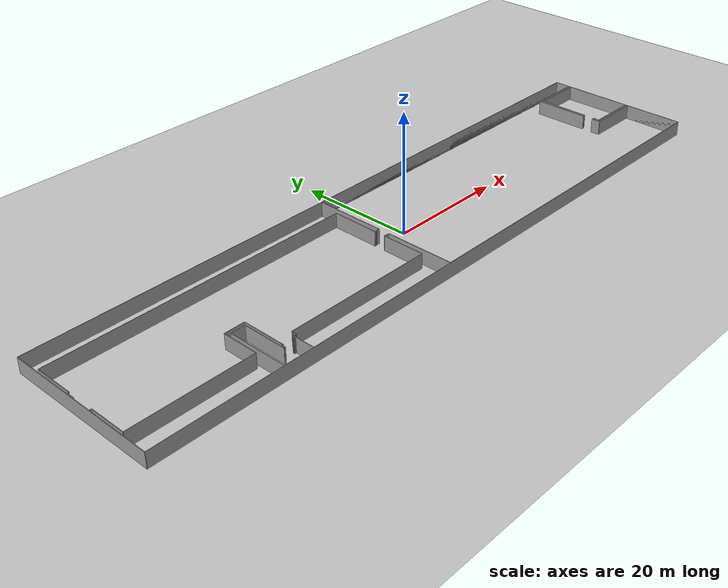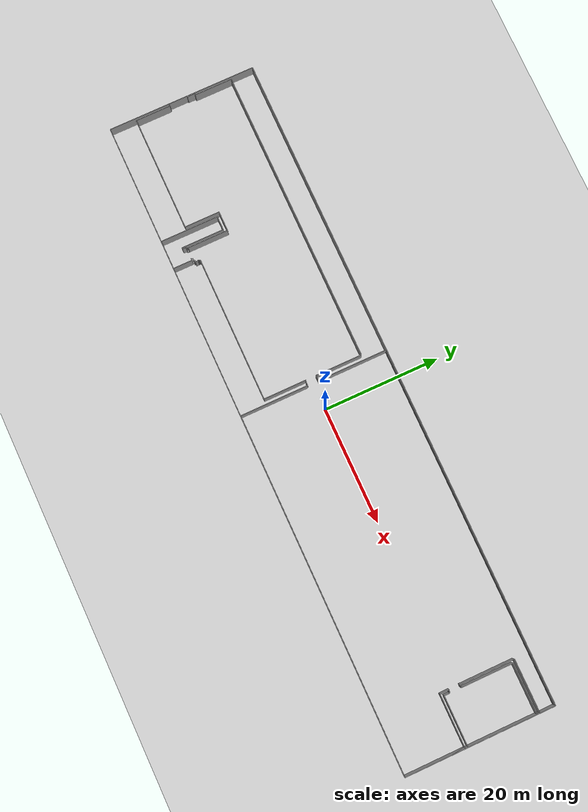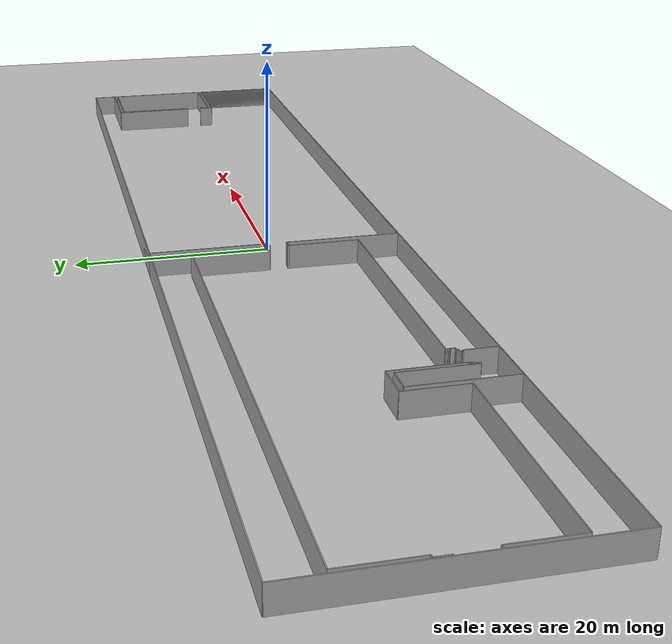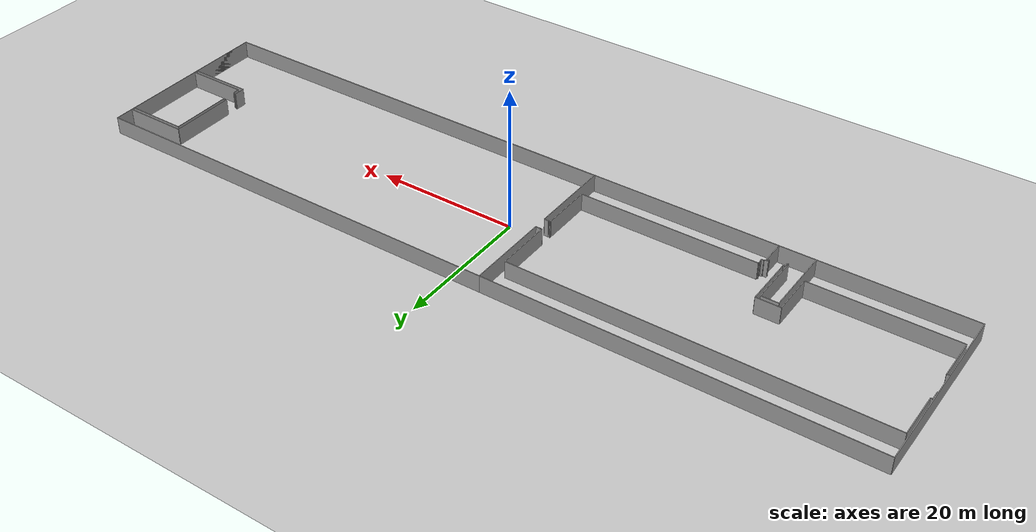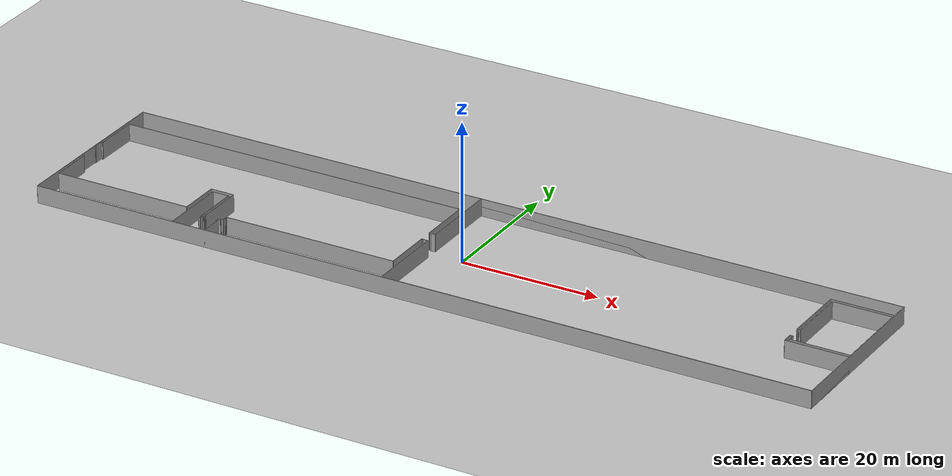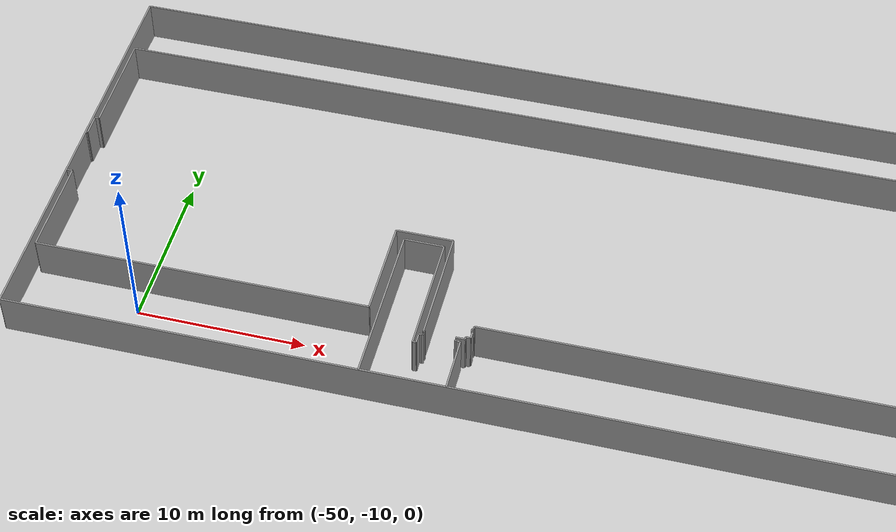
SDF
<sdf version="1.6">
  <world name="default">
    <light name="sun" type="directional">
      <cast_shadows>1</cast_shadows>
      <pose frame="">0 0 10 0 -0 0</pose>
      <diffuse>0.8 0.8 0.8 1</diffuse>
      <specular>0.1 0.1 0.1 1</specular>
      <attenuation>
        <range>1000</range>
        <constant>0.9</constant>
        <linear>0.01</linear>
        <quadratic>0.001</quadratic>
      </attenuation>
      <direction>-0.5 0.5 -1</direction>
    </light>
    <model name="ground_plane">
      <static>1</static>
      <link name="link">
        <collision name="collision">
          <geometry>
            <plane>
              <normal>0 0 1</normal>
              <size>100 100</size>
            </plane>
          </geometry>
          <surface>
            <friction>
              <ode>
                <mu>100</mu>
                <mu2>50</mu2>
              </ode>
              <torsional>
                <ode />
              </torsional>
            </friction>
            <contact>
              <ode />
            </contact>
            <bounce />
          </surface>
          <max_contacts>10</max_contacts>
        </collision>
        <visual name="visual">
          <cast_shadows>0</cast_shadows>
          <geometry>
            <plane>
              <normal>0 0 1</normal>
              <size>100 100</size>
            </plane>
          </geometry>
          <material>
            <script>
              <uri>file://media/materials/scripts/gazebo.material</uri>
              <name>Gazebo/Grey</name>
            </script>
          </material>
        </visual>
        <self_collide>0</self_collide>
        <kinematic>0</kinematic>
        <gravity>1</gravity>
      </link>
    </model>
    <gravity>0 0 -9.8</gravity>
    <magnetic_field>6e-06 2.3e-05 -4.2e-05</magnetic_field>
    <atmosphere type="adiabatic" />
    <physics default="0" name="default_physics" type="ode">
      <max_step_size>0.001</max_step_size>
      <real_time_factor>1</real_time_factor>
      <real_time_update_rate>1000</real_time_update_rate>
    </physics>
    <scene>
      <ambient>0.4 0.4 0.4 1</ambient>
      <background>0.7 0.7 0.7 1</background>
      <shadows>1</shadows>
    </scene>
    <spherical_coordinates>
      <surface_model>EARTH_WGS84</surface_model>
      <latitude_deg>0</latitude_deg>
      <longitude_deg>0</longitude_deg>
      <elevation>0</elevation>
      <heading_deg>0</heading_deg>
    </spherical_coordinates>
  <model name="50055642">
		<static>1</static>
		<link name="Wall_0">
			<collision name="Wall_0_Collision">
				<geometry>
					<box>
						<size>9.98049765908 0.1 2.5</size>
					</box>
				</geometry>
				<pose frame="">4.99024882954 0 1.25 0 0 0</pose>
			</collision>
			<visual name="Wall_0_Visual">
				<pose frame="">4.99024882954 0 1.25 0 0 0</pose>
				<geometry>
					<box>
						<size>9.98049765908 0.1 2.5</size>
					</box>
				</geometry>
				<material>
					<script>
						<uri>file://media/materials/scripts/gazebo.material</uri>
						<name>Gazebo/Grey</name>
					</script>
					<ambient>1 1 1 1</ambient>
				</material>
			</visual>
			<pose frame="">20.943989531 -25.6984950799 0 0 0 1.57079632679</pose>
		</link>
		<link name="Wall_1">
			<collision name="Wall_1_Collision">
				<geometry>
					<box>
						<size>2.38817916743 0.1 2.5</size>
					</box>
				</geometry>
				<pose frame="">1.19408958372 0 1.25 0 0 0</pose>
			</collision>
			<visual name="Wall_1_Visual">
				<pose frame="">1.19408958372 0 1.25 0 0 0</pose>
				<geometry>
					<box>
						<size>2.38817916743 0.1 2.5</size>
					</box>
				</geometry>
				<material>
					<script>
						<uri>file://media/materials/scripts/gazebo.material</uri>
						<name>Gazebo/Grey</name>
					</script>
					<ambient>1 1 1 1</ambient>
				</material>
			</visual>
			<pose frame="">20.943989531 -15.7179974209 0 0 0 0.0</pose>
		</link>
		<link name="Wall_2">
			<collision name="Wall_2_Collision">
				<geometry>
					<box>
						<size>7.34418773068 0.1 2.5</size>
					</box>
				</geometry>
				<pose frame="">3.67209386534 0 1.25 0 0 0</pose>
			</collision>
			<visual name="Wall_2_Visual">
				<pose frame="">3.67209386534 0 1.25 0 0 0</pose>
				<geometry>
					<box>
						<size>7.34418773068 0.1 2.5</size>
					</box>
				</geometry>
				<material>
					<script>
						<uri>file://media/materials/scripts/gazebo.material</uri>
						<name>Gazebo/Grey</name>
					</script>
					<ambient>1 1 1 1</ambient>
				</material>
			</visual>
			<pose frame="">23.3321686984 -15.7179974209 0 0 0 -1.57079632679</pose>
		</link>
		<link name="Wall_3">
			<collision name="Wall_3_Collision">
				<geometry>
					<box>
						<size>0.207093261846 0.1 2.5</size>
					</box>
				</geometry>
				<pose frame="">0.103546630923 0 1.25 0 0 0</pose>
			</collision>
			<visual name="Wall_3_Visual">
				<pose frame="">0.103546630923 0 1.25 0 0 0</pose>
				<geometry>
					<box>
						<size>0.207093261846 0.1 2.5</size>
					</box>
				</geometry>
				<material>
					<script>
						<uri>file://media/materials/scripts/gazebo.material</uri>
						<name>Gazebo/Grey</name>
					</script>
					<ambient>1 1 1 1</ambient>
				</material>
			</visual>
			<pose frame="">23.3321686984 -23.0621851515 0 0 0 0.0</pose>
		</link>
		<link name="Wall_4">
			<collision name="Wall_4_Collision">
				<geometry>
					<box>
						<size>0.628140543906 0.1 2.5</size>
					</box>
				</geometry>
				<pose frame="">0.314070271953 0 1.25 0 0 0</pose>
			</collision>
			<visual name="Wall_4_Visual">
				<pose frame="">0.314070271953 0 1.25 0 0 0</pose>
				<geometry>
					<box>
						<size>0.628140543906 0.1 2.5</size>
					</box>
				</geometry>
				<material>
					<script>
						<uri>file://media/materials/scripts/gazebo.material</uri>
						<name>Gazebo/Grey</name>
					</script>
					<ambient>1 1 1 1</ambient>
				</material>
			</visual>
			<pose frame="">23.5392619603 -23.0621851515 0 0 0 1.57079632679</pose>
		</link>
		<link name="Wall_5">
			<collision name="Wall_5_Collision">
				<geometry>
					<box>
						<size>0.166563967043 0.1 2.5</size>
					</box>
				</geometry>
				<pose frame="">0.0832819835215 0 1.25 0 0 0</pose>
			</collision>
			<visual name="Wall_5_Visual">
				<pose frame="">0.0832819835215 0 1.25 0 0 0</pose>
				<geometry>
					<box>
						<size>0.166563967043 0.1 2.5</size>
					</box>
				</geometry>
				<material>
					<script>
						<uri>file://media/materials/scripts/gazebo.material</uri>
						<name>Gazebo/Grey</name>
					</script>
					<ambient>1 1 1 1</ambient>
				</material>
			</visual>
			<pose frame="">23.5392619603 -22.4340446076 0 0 0 0.0</pose>
		</link>
		<link name="Wall_6">
			<collision name="Wall_6_Collision">
				<geometry>
					<box>
						<size>0.0190576621331 0.1 2.5</size>
					</box>
				</geometry>
				<pose frame="">0.00952883106653 0 1.25 0 0 0</pose>
			</collision>
			<visual name="Wall_6_Visual">
				<pose frame="">0.00952883106653 0 1.25 0 0 0</pose>
				<geometry>
					<box>
						<size>0.0190576621331 0.1 2.5</size>
					</box>
				</geometry>
				<material>
					<script>
						<uri>file://media/materials/scripts/gazebo.material</uri>
						<name>Gazebo/Grey</name>
					</script>
					<ambient>1 1 1 1</ambient>
				</material>
			</visual>
			<pose frame="">23.7058259273 -22.4340446076 0 0 0 1.57079632679</pose>
		</link>
		<link name="Wall_7">
			<collision name="Wall_7_Collision">
				<geometry>
					<box>
						<size>0.106595856864 0.1 2.5</size>
					</box>
				</geometry>
				<pose frame="">0.0532979284321 0 1.25 0 0 0</pose>
			</collision>
			<visual name="Wall_7_Visual">
				<pose frame="">0.0532979284321 0 1.25 0 0 0</pose>
				<geometry>
					<box>
						<size>0.106595856864 0.1 2.5</size>
					</box>
				</geometry>
				<material>
					<script>
						<uri>file://media/materials/scripts/gazebo.material</uri>
						<name>Gazebo/Grey</name>
					</script>
					<ambient>1 1 1 1</ambient>
				</material>
			</visual>
			<pose frame="">23.7058259273 -22.4149869455 0 0 0 0.0</pose>
		</link>
		<link name="Wall_8">
			<collision name="Wall_8_Collision">
				<geometry>
					<box>
						<size>0.126288774402 0.1 2.5</size>
					</box>
				</geometry>
				<pose frame="">0.0631443872009 0 1.25 0 0 0</pose>
			</collision>
			<visual name="Wall_8_Visual">
				<pose frame="">0.0631443872009 0 1.25 0 0 0</pose>
				<geometry>
					<box>
						<size>0.126288774402 0.1 2.5</size>
					</box>
				</geometry>
				<material>
					<script>
						<uri>file://media/materials/scripts/gazebo.material</uri>
						<name>Gazebo/Grey</name>
					</script>
					<ambient>1 1 1 1</ambient>
				</material>
			</visual>
			<pose frame="">25.5598823507 -22.4149869455 0 0 0 0.0</pose>
		</link>
		<link name="Wall_9">
			<collision name="Wall_9_Collision">
				<geometry>
					<box>
						<size>0.0135944656549 0.1 2.5</size>
					</box>
				</geometry>
				<pose frame="">0.00679723282746 0 1.25 0 0 0</pose>
			</collision>
			<visual name="Wall_9_Visual">
				<pose frame="">0.00679723282746 0 1.25 0 0 0</pose>
				<geometry>
					<box>
						<size>0.0135944656549 0.1 2.5</size>
					</box>
				</geometry>
				<material>
					<script>
						<uri>file://media/materials/scripts/gazebo.material</uri>
						<name>Gazebo/Grey</name>
					</script>
					<ambient>1 1 1 1</ambient>
				</material>
			</visual>
			<pose frame="">25.6861711251 -22.4149869455 0 0 0 -1.57079632679</pose>
		</link>
		<link name="Wall_10">
			<collision name="Wall_10_Collision">
				<geometry>
					<box>
						<size>0.221322982905 0.1 2.5</size>
					</box>
				</geometry>
				<pose frame="">0.110661491453 0 1.25 0 0 0</pose>
			</collision>
			<visual name="Wall_10_Visual">
				<pose frame="">0.110661491453 0 1.25 0 0 0</pose>
				<geometry>
					<box>
						<size>0.221322982905 0.1 2.5</size>
					</box>
				</geometry>
				<material>
					<script>
						<uri>file://media/materials/scripts/gazebo.material</uri>
						<name>Gazebo/Grey</name>
					</script>
					<ambient>1 1 1 1</ambient>
				</material>
			</visual>
			<pose frame="">25.6861711251 -22.4285814112 0 0 0 0.0</pose>
		</link>
		<link name="Wall_11">
			<collision name="Wall_11_Collision">
				<geometry>
					<box>
						<size>3.2824917258 0.1 2.5</size>
					</box>
				</geometry>
				<pose frame="">1.6412458629 0 1.25 0 0 0</pose>
			</collision>
			<visual name="Wall_11_Visual">
				<pose frame="">1.6412458629 0 1.25 0 0 0</pose>
				<geometry>
					<box>
						<size>3.2824917258 0.1 2.5</size>
					</box>
				</geometry>
				<material>
					<script>
						<uri>file://media/materials/scripts/gazebo.material</uri>
						<name>Gazebo/Grey</name>
					</script>
					<ambient>1 1 1 1</ambient>
				</material>
			</visual>
			<pose frame="">25.907494108 -22.4285814112 0 0 0 -1.57079632679</pose>
		</link>
		<link name="Wall_12">
			<collision name="Wall_12_Collision">
				<geometry>
					<box>
						<size>4.96352051407 0.1 2.5</size>
					</box>
				</geometry>
				<pose frame="">2.48176025703 0 1.25 0 0 0</pose>
			</collision>
			<visual name="Wall_12_Visual">
				<pose frame="">2.48176025703 0 1.25 0 0 0</pose>
				<geometry>
					<box>
						<size>4.96352051407 0.1 2.5</size>
					</box>
				</geometry>
				<material>
					<script>
						<uri>file://media/materials/scripts/gazebo.material</uri>
						<name>Gazebo/Grey</name>
					</script>
					<ambient>1 1 1 1</ambient>
				</material>
			</visual>
			<pose frame="">25.907494108 -25.711073137 0 0 0 3.13905855094</pose>
		</link>
		<link name="Wall_13">
			<collision name="Wall_13_Collision">
				<geometry>
					<box>
						<size>6.02349174486 0.1 2.5</size>
					</box>
				</geometry>
				<pose frame="">3.01174587243 0 1.25 0 0 0</pose>
			</collision>
			<visual name="Wall_13_Visual">
				<pose frame="">3.01174587243 0 1.25 0 0 0</pose>
				<geometry>
					<box>
						<size>6.02349174486 0.1 2.5</size>
					</box>
				</geometry>
				<material>
					<script>
						<uri>file://media/materials/scripts/gazebo.material</uri>
						<name>Gazebo/Grey</name>
					</script>
					<ambient>1 1 1 1</ambient>
				</material>
			</visual>
			<pose frame="">0.384202468603 -21.1750954471 0 0 0 1.57079632679</pose>
		</link>
		<link name="Wall_14">
			<collision name="Wall_14_Collision">
				<geometry>
					<box>
						<size>0.384202468603 0.1 2.5</size>
					</box>
				</geometry>
				<pose frame="">0.192101234301 0 1.25 0 0 0</pose>
			</collision>
			<visual name="Wall_14_Visual">
				<pose frame="">0.192101234301 0 1.25 0 0 0</pose>
				<geometry>
					<box>
						<size>0.384202468603 0.1 2.5</size>
					</box>
				</geometry>
				<material>
					<script>
						<uri>file://media/materials/scripts/gazebo.material</uri>
						<name>Gazebo/Grey</name>
					</script>
					<ambient>1 1 1 1</ambient>
				</material>
			</visual>
			<pose frame="">0.384202468603 -15.1516037023 0 0 0 3.14159265359</pose>
		</link>
		<link name="Wall_15">
			<collision name="Wall_15_Collision">
				<geometry>
					<box>
						<size>0.124255957108 0.1 2.5</size>
					</box>
				</geometry>
				<pose frame="">0.0621279785538 0 1.25 0 0 0</pose>
			</collision>
			<visual name="Wall_15_Visual">
				<pose frame="">0.0621279785538 0 1.25 0 0 0</pose>
				<geometry>
					<box>
						<size>0.124255957108 0.1 2.5</size>
					</box>
				</geometry>
				<material>
					<script>
						<uri>file://media/materials/scripts/gazebo.material</uri>
						<name>Gazebo/Grey</name>
					</script>
					<ambient>1 1 1 1</ambient>
				</material>
			</visual>
			<pose frame="">0.0 -11.8703824873 0 0 0 0.0</pose>
		</link>
		<link name="Wall_16">
			<collision name="Wall_16_Collision">
				<geometry>
					<box>
						<size>1.32374521176 0.1 2.5</size>
					</box>
				</geometry>
				<pose frame="">0.661872605881 0 1.25 0 0 0</pose>
			</collision>
			<visual name="Wall_16_Visual">
				<pose frame="">0.661872605881 0 1.25 0 0 0</pose>
				<geometry>
					<box>
						<size>1.32374521176 0.1 2.5</size>
					</box>
				</geometry>
				<material>
					<script>
						<uri>file://media/materials/scripts/gazebo.material</uri>
						<name>Gazebo/Grey</name>
					</script>
					<ambient>1 1 1 1</ambient>
				</material>
			</visual>
			<pose frame="">0.124255957108 -11.8703824873 0 0 0 1.57079632679</pose>
		</link>
		<link name="Wall_17">
			<collision name="Wall_17_Collision">
				<geometry>
					<box>
						<size>0.251434089076 0.1 2.5</size>
					</box>
				</geometry>
				<pose frame="">0.125717044538 0 1.25 0 0 0</pose>
			</collision>
			<visual name="Wall_17_Visual">
				<pose frame="">0.125717044538 0 1.25 0 0 0</pose>
				<geometry>
					<box>
						<size>0.251434089076 0.1 2.5</size>
					</box>
				</geometry>
				<material>
					<script>
						<uri>file://media/materials/scripts/gazebo.material</uri>
						<name>Gazebo/Grey</name>
					</script>
					<ambient>1 1 1 1</ambient>
				</material>
			</visual>
			<pose frame="">0.124255957108 -10.5466372755 0 0 0 0.0</pose>
		</link>
		<link name="Wall_18">
			<collision name="Wall_18_Collision">
				<geometry>
					<box>
						<size>6.51797455167 0.1 2.5</size>
					</box>
				</geometry>
				<pose frame="">3.25898727583 0 1.25 0 0 0</pose>
			</collision>
			<visual name="Wall_18_Visual">
				<pose frame="">3.25898727583 0 1.25 0 0 0</pose>
				<geometry>
					<box>
						<size>6.51797455167 0.1 2.5</size>
					</box>
				</geometry>
				<material>
					<script>
						<uri>file://media/materials/scripts/gazebo.material</uri>
						<name>Gazebo/Grey</name>
					</script>
					<ambient>1 1 1 1</ambient>
				</material>
			</visual>
			<pose frame="">0.375690046183 -10.5466372755 0 0 0 1.57079632679</pose>
		</link>
		<link name="Wall_19">
			<collision name="Wall_19_Collision">
				<geometry>
					<box>
						<size>51.1754130748 0.1 2.5</size>
					</box>
				</geometry>
				<pose frame="">25.5877065374 0 1.25 0 0 0</pose>
			</collision>
			<visual name="Wall_19_Visual">
				<pose frame="">25.5877065374 0 1.25 0 0 0</pose>
				<geometry>
					<box>
						<size>51.1754130748 0.1 2.5</size>
					</box>
				</geometry>
				<material>
					<script>
						<uri>file://media/materials/scripts/gazebo.material</uri>
						<name>Gazebo/Grey</name>
					</script>
					<ambient>1 1 1 1</ambient>
				</material>
			</visual>
			<pose frame="">0.375690046183 -4.02866272385 0 0 0 0.0</pose>
		</link>
		<link name="Wall_20">
			<collision name="Wall_20_Collision">
				<geometry>
					<box>
						<size>7.95975021757 0.1 2.5</size>
					</box>
				</geometry>
				<pose frame="">3.97987510879 0 1.25 0 0 0</pose>
			</collision>
			<visual name="Wall_20_Visual">
				<pose frame="">3.97987510879 0 1.25 0 0 0</pose>
				<geometry>
					<box>
						<size>7.95975021757 0.1 2.5</size>
					</box>
				</geometry>
				<material>
					<script>
						<uri>file://media/materials/scripts/gazebo.material</uri>
						<name>Gazebo/Grey</name>
					</script>
					<ambient>1 1 1 1</ambient>
				</material>
			</visual>
			<pose frame="">51.551103121 -4.02866272385 0 0 0 -1.57079632679</pose>
		</link>
		<link name="Wall_21">
			<collision name="Wall_21_Collision">
				<geometry>
					<box>
						<size>0.0205822751037 0.1 2.5</size>
					</box>
				</geometry>
				<pose frame="">0.0102911375519 0 1.25 0 0 0</pose>
			</collision>
			<visual name="Wall_21_Visual">
				<pose frame="">0.0102911375519 0 1.25 0 0 0</pose>
				<geometry>
					<box>
						<size>0.0205822751037 0.1 2.5</size>
					</box>
				</geometry>
				<material>
					<script>
						<uri>file://media/materials/scripts/gazebo.material</uri>
						<name>Gazebo/Grey</name>
					</script>
					<ambient>1 1 1 1</ambient>
				</material>
			</visual>
			<pose frame="">51.551103121 -11.9884129414 0 0 0 0.0</pose>
		</link>
		<link name="Wall_22">
			<collision name="Wall_22_Collision">
				<geometry>
					<box>
						<size>0.0683534815172 0.1 2.5</size>
					</box>
				</geometry>
				<pose frame="">0.0341767407586 0 1.25 0 0 0</pose>
			</collision>
			<visual name="Wall_22_Visual">
				<pose frame="">0.0341767407586 0 1.25 0 0 0</pose>
				<geometry>
					<box>
						<size>0.0683534815172 0.1 2.5</size>
					</box>
				</geometry>
				<material>
					<script>
						<uri>file://media/materials/scripts/gazebo.material</uri>
						<name>Gazebo/Grey</name>
					</script>
					<ambient>1 1 1 1</ambient>
				</material>
			</visual>
			<pose frame="">51.5716853961 -11.9884129414 0 0 0 -1.57079632679</pose>
		</link>
		<link name="Wall_23">
			<collision name="Wall_23_Collision">
				<geometry>
					<box>
						<size>0.152842450307 0.1 2.5</size>
					</box>
				</geometry>
				<pose frame="">0.0764212251536 0 1.25 0 0 0</pose>
			</collision>
			<visual name="Wall_23_Visual">
				<pose frame="">0.0764212251536 0 1.25 0 0 0</pose>
				<geometry>
					<box>
						<size>0.152842450307 0.1 2.5</size>
					</box>
				</geometry>
				<material>
					<script>
						<uri>file://media/materials/scripts/gazebo.material</uri>
						<name>Gazebo/Grey</name>
					</script>
					<ambient>1 1 1 1</ambient>
				</material>
			</visual>
			<pose frame="">51.5716853961 -13.8105795435 0 0 0 -1.57079632679</pose>
		</link>
		<link name="Wall_24">
			<collision name="Wall_24_Collision">
				<geometry>
					<box>
						<size>0.0135944656549 0.1 2.5</size>
					</box>
				</geometry>
				<pose frame="">0.00679723282745 0 1.25 0 0 0</pose>
			</collision>
			<visual name="Wall_24_Visual">
				<pose frame="">0.00679723282745 0 1.25 0 0 0</pose>
				<geometry>
					<box>
						<size>0.0135944656549 0.1 2.5</size>
					</box>
				</geometry>
				<material>
					<script>
						<uri>file://media/materials/scripts/gazebo.material</uri>
						<name>Gazebo/Grey</name>
					</script>
					<ambient>1 1 1 1</ambient>
				</material>
			</visual>
			<pose frame="">51.5716853961 -13.9634219938 0 0 0 3.14159265359</pose>
		</link>
		<link name="Wall_25">
			<collision name="Wall_25_Collision">
				<geometry>
					<box>
						<size>7.2037962863 0.1 2.5</size>
					</box>
				</geometry>
				<pose frame="">3.60189814315 0 1.25 0 0 0</pose>
			</collision>
			<visual name="Wall_25_Visual">
				<pose frame="">3.60189814315 0 1.25 0 0 0</pose>
				<geometry>
					<box>
						<size>7.2037962863 0.1 2.5</size>
					</box>
				</geometry>
				<material>
					<script>
						<uri>file://media/materials/scripts/gazebo.material</uri>
						<name>Gazebo/Grey</name>
					</script>
					<ambient>1 1 1 1</ambient>
				</material>
			</visual>
			<pose frame="">51.5580909305 -13.9634219938 0 0 0 -1.57079632679</pose>
		</link>
		<link name="Wall_26">
			<collision name="Wall_26_Collision">
				<geometry>
					<box>
						<size>25.1450605716 0.1 2.5</size>
					</box>
				</geometry>
				<pose frame="">12.5725302858 0 1.25 0 0 0</pose>
			</collision>
			<visual name="Wall_26_Visual">
				<pose frame="">12.5725302858 0 1.25 0 0 0</pose>
				<geometry>
					<box>
						<size>25.1450605716 0.1 2.5</size>
					</box>
				</geometry>
				<material>
					<script>
						<uri>file://media/materials/scripts/gazebo.material</uri>
						<name>Gazebo/Grey</name>
					</script>
					<ambient>1 1 1 1</ambient>
				</material>
			</visual>
			<pose frame="">51.5580909305 -21.1672182801 0 0 0 3.14159265359</pose>
		</link>
		<link name="Wall_27">
			<collision name="Wall_27_Collision">
				<geometry>
					<box>
						<size>0.151063735175 0.1 2.5</size>
					</box>
				</geometry>
				<pose frame="">0.0755318675874 0 1.25 0 0 0</pose>
			</collision>
			<visual name="Wall_27_Visual">
				<pose frame="">0.0755318675874 0 1.25 0 0 0</pose>
				<geometry>
					<box>
						<size>0.151063735175 0.1 2.5</size>
					</box>
				</geometry>
				<material>
					<script>
						<uri>file://media/materials/scripts/gazebo.material</uri>
						<name>Gazebo/Grey</name>
					</script>
					<ambient>1 1 1 1</ambient>
				</material>
			</visual>
			<pose frame="">26.4130303589 -21.1672182801 0 0 0 -1.57079632679</pose>
		</link>
		<link name="Wall_28">
			<collision name="Wall_28_Collision">
				<geometry>
					<box>
						<size>0.109903591275 0.1 2.5</size>
					</box>
				</geometry>
				<pose frame="">0.0549517956374 0 1.25 0 0 0</pose>
			</collision>
			<visual name="Wall_28_Visual">
				<pose frame="">0.0549517956374 0 1.25 0 0 0</pose>
				<geometry>
					<box>
						<size>0.109903591275 0.1 2.5</size>
					</box>
				</geometry>
				<material>
					<script>
						<uri>file://media/materials/scripts/gazebo.material</uri>
						<name>Gazebo/Grey</name>
					</script>
					<ambient>1 1 1 1</ambient>
				</material>
			</visual>
			<pose frame="">26.4130303589 -21.3182820153 0 0 0 -2.33248674974</pose>
		</link>
		<link name="Wall_29">
			<collision name="Wall_29_Collision">
				<geometry>
					<box>
						<size>0.097513090959 0.1 2.5</size>
					</box>
				</geometry>
				<pose frame="">0.0487565454795 0 1.25 0 0 0</pose>
			</collision>
			<visual name="Wall_29_Visual">
				<pose frame="">0.0487565454795 0 1.25 0 0 0</pose>
				<geometry>
					<box>
						<size>0.097513090959 0.1 2.5</size>
					</box>
				</geometry>
				<material>
					<script>
						<uri>file://media/materials/scripts/gazebo.material</uri>
						<name>Gazebo/Grey</name>
					</script>
					<ambient>1 1 1 1</ambient>
				</material>
			</visual>
			<pose frame="">26.3371808636 -21.3978159919 0 0 0 -1.6072859899</pose>
		</link>
		<link name="Wall_30">
			<collision name="Wall_30_Collision">
				<geometry>
					<box>
						<size>0.118419854514 0.1 2.5</size>
					</box>
				</geometry>
				<pose frame="">0.0592099272571 0 1.25 0 0 0</pose>
			</collision>
			<visual name="Wall_30_Visual">
				<pose frame="">0.0592099272571 0 1.25 0 0 0</pose>
				<geometry>
					<box>
						<size>0.118419854514 0.1 2.5</size>
					</box>
				</geometry>
				<material>
					<script>
						<uri>file://media/materials/scripts/gazebo.material</uri>
						<name>Gazebo/Grey</name>
					</script>
					<ambient>1 1 1 1</ambient>
				</material>
			</visual>
			<pose frame="">26.3336234333 -21.495264171 0 0 0 -0.915493190884</pose>
		</link>
		<link name="Wall_31">
			<collision name="Wall_31_Collision">
				<geometry>
					<box>
						<size>0.431973675016 0.1 2.5</size>
					</box>
				</geometry>
				<pose frame="">0.215986837508 0 1.25 0 0 0</pose>
			</collision>
			<visual name="Wall_31_Visual">
				<pose frame="">0.215986837508 0 1.25 0 0 0</pose>
				<geometry>
					<box>
						<size>0.431973675016 0.1 2.5</size>
					</box>
				</geometry>
				<material>
					<script>
						<uri>file://media/materials/scripts/gazebo.material</uri>
						<name>Gazebo/Grey</name>
					</script>
					<ambient>1 1 1 1</ambient>
				</material>
			</visual>
			<pose frame="">26.4057884472 -21.5891549197 0 0 0 -1.57079632679</pose>
		</link>
		<link name="Wall_32">
			<collision name="Wall_32_Collision">
				<geometry>
					<box>
						<size>0.281545195246 0.1 2.5</size>
					</box>
				</geometry>
				<pose frame="">0.140772597623 0 1.25 0 0 0</pose>
			</collision>
			<visual name="Wall_32_Visual">
				<pose frame="">0.140772597623 0 1.25 0 0 0</pose>
				<geometry>
					<box>
						<size>0.281545195246 0.1 2.5</size>
					</box>
				</geometry>
				<material>
					<script>
						<uri>file://media/materials/scripts/gazebo.material</uri>
						<name>Gazebo/Grey</name>
					</script>
					<ambient>1 1 1 1</ambient>
				</material>
			</visual>
			<pose frame="">26.4057884472 -22.0211285948 0 0 0 3.14159265359</pose>
		</link>
		<link name="Wall_33">
			<collision name="Wall_33_Collision">
				<geometry>
					<box>
						<size>0.1575433403 0.1 2.5</size>
					</box>
				</geometry>
				<pose frame="">0.07877167015 0 1.25 0 0 0</pose>
			</collision>
			<visual name="Wall_33_Visual">
				<pose frame="">0.07877167015 0 1.25 0 0 0</pose>
				<geometry>
					<box>
						<size>0.1575433403 0.1 2.5</size>
					</box>
				</geometry>
				<material>
					<script>
						<uri>file://media/materials/scripts/gazebo.material</uri>
						<name>Gazebo/Grey</name>
					</script>
					<ambient>1 1 1 1</ambient>
				</material>
			</visual>
			<pose frame="">26.124243252 -22.0211285948 0 0 0 -1.57079632679</pose>
		</link>
		<link name="Wall_34">
			<collision name="Wall_34_Collision">
				<geometry>
					<box>
						<size>0.549114771594 0.1 2.5</size>
					</box>
				</geometry>
				<pose frame="">0.274557385797 0 1.25 0 0 0</pose>
			</collision>
			<visual name="Wall_34_Visual">
				<pose frame="">0.274557385797 0 1.25 0 0 0</pose>
				<geometry>
					<box>
						<size>0.549114771594 0.1 2.5</size>
					</box>
				</geometry>
				<material>
					<script>
						<uri>file://media/materials/scripts/gazebo.material</uri>
						<name>Gazebo/Grey</name>
					</script>
					<ambient>1 1 1 1</ambient>
				</material>
			</visual>
			<pose frame="">26.124243252 -22.1786719351 0 0 0 3.14159265359</pose>
		</link>
		<link name="Wall_35">
			<collision name="Wall_35_Collision">
				<geometry>
					<box>
						<size>0.0903333185107 0.1 2.5</size>
					</box>
				</geometry>
				<pose frame="">0.0451666592554 0 1.25 0 0 0</pose>
			</collision>
			<visual name="Wall_35_Visual">
				<pose frame="">0.0451666592554 0 1.25 0 0 0</pose>
				<geometry>
					<box>
						<size>0.0903333185107 0.1 2.5</size>
					</box>
				</geometry>
				<material>
					<script>
						<uri>file://media/materials/scripts/gazebo.material</uri>
						<name>Gazebo/Grey</name>
					</script>
					<ambient>1 1 1 1</ambient>
				</material>
			</visual>
			<pose frame="">23.8274138117 -22.1786719351 0 0 0 3.14159265359</pose>
		</link>
		<link name="Wall_36">
			<collision name="Wall_36_Collision">
				<geometry>
					<box>
						<size>7.03786757466 0.1 2.5</size>
					</box>
				</geometry>
				<pose frame="">3.51893378733 0 1.25 0 0 0</pose>
			</collision>
			<visual name="Wall_36_Visual">
				<pose frame="">3.51893378733 0 1.25 0 0 0</pose>
				<geometry>
					<box>
						<size>7.03786757466 0.1 2.5</size>
					</box>
				</geometry>
				<material>
					<script>
						<uri>file://media/materials/scripts/gazebo.material</uri>
						<name>Gazebo/Grey</name>
					</script>
					<ambient>1 1 1 1</ambient>
				</material>
			</visual>
			<pose frame="">23.7370804932 -22.1786719351 0 0 0 1.57079632679</pose>
		</link>
		<link name="Wall_37">
			<collision name="Wall_37_Collision">
				<geometry>
					<box>
						<size>3.40585832534 0.1 2.5</size>
					</box>
				</geometry>
				<pose frame="">1.70292916267 0 1.25 0 0 0</pose>
			</collision>
			<visual name="Wall_37_Visual">
				<pose frame="">1.70292916267 0 1.25 0 0 0</pose>
				<geometry>
					<box>
						<size>3.40585832534 0.1 2.5</size>
					</box>
				</geometry>
				<material>
					<script>
						<uri>file://media/materials/scripts/gazebo.material</uri>
						<name>Gazebo/Grey</name>
					</script>
					<ambient>1 1 1 1</ambient>
				</material>
			</visual>
			<pose frame="">23.7370804932 -15.1408043604 0 0 0 3.14159265359</pose>
		</link>
		<link name="Wall_38">
			<collision name="Wall_38_Collision">
				<geometry>
					<box>
						<size>6.04204120267 0.1 2.5</size>
					</box>
				</geometry>
				<pose frame="">3.02102060133 0 1.25 0 0 0</pose>
			</collision>
			<visual name="Wall_38_Visual">
				<pose frame="">3.02102060133 0 1.25 0 0 0</pose>
				<geometry>
					<box>
						<size>6.04204120267 0.1 2.5</size>
					</box>
				</geometry>
				<material>
					<script>
						<uri>file://media/materials/scripts/gazebo.material</uri>
						<name>Gazebo/Grey</name>
					</script>
					<ambient>1 1 1 1</ambient>
				</material>
			</visual>
			<pose frame="">20.3312221679 -15.1408043604 0 0 0 -1.57079632679</pose>
		</link>
		<link name="Wall_39">
			<collision name="Wall_39_Collision">
				<geometry>
					<box>
						<size>19.9470212049 0.1 2.5</size>
					</box>
				</geometry>
				<pose frame="">9.97351060243 0 1.25 0 0 0</pose>
			</collision>
			<visual name="Wall_39_Visual">
				<pose frame="">9.97351060243 0 1.25 0 0 0</pose>
				<geometry>
					<box>
						<size>19.9470212049 0.1 2.5</size>
					</box>
				</geometry>
				<material>
					<script>
						<uri>file://media/materials/scripts/gazebo.material</uri>
						<name>Gazebo/Grey</name>
					</script>
					<ambient>1 1 1 1</ambient>
				</material>
			</visual>
			<pose frame="">20.3312221679 -21.1828455631 0 0 0 3.14120411858</pose>
		</link>
		<link name="Wall_40">
			<collision name="Wall_40_Collision">
				<geometry>
					<box>
						<size>11.7527331864 0.1 2.5</size>
					</box>
				</geometry>
				<pose frame="">5.87636659319 0 1.25 0 0 0</pose>
			</collision>
			<visual name="Wall_40_Visual">
				<pose frame="">5.87636659319 0 1.25 0 0 0</pose>
				<geometry>
					<box>
						<size>11.7527331864 0.1 2.5</size>
					</box>
				</geometry>
				<material>
					<script>
						<uri>file://media/materials/scripts/gazebo.material</uri>
						<name>Gazebo/Grey</name>
					</script>
					<ambient>1 1 1 1</ambient>
				</material>
			</visual>
			<pose frame="">52.4717152531 -25.6709249954 0 0 0 1.57079632679</pose>
		</link>
		<link name="Wall_41">
			<collision name="Wall_41_Collision">
				<geometry>
					<box>
						<size>0.662063182503 0.1 2.5</size>
					</box>
				</geometry>
				<pose frame="">0.331031591251 0 1.25 0 0 0</pose>
			</collision>
			<visual name="Wall_41_Visual">
				<pose frame="">0.331031591251 0 1.25 0 0 0</pose>
				<geometry>
					<box>
						<size>0.662063182503 0.1 2.5</size>
					</box>
				</geometry>
				<material>
					<script>
						<uri>file://media/materials/scripts/gazebo.material</uri>
						<name>Gazebo/Grey</name>
					</script>
					<ambient>1 1 1 1</ambient>
				</material>
			</visual>
			<pose frame="">52.4717152531 -13.918191809 0 0 0 3.14159265359</pose>
		</link>
		<link name="Wall_42">
			<collision name="Wall_42_Collision">
				<geometry>
					<box>
						<size>0.0938907487755 0.1 2.5</size>
					</box>
				</geometry>
				<pose frame="">0.0469453743878 0 1.25 0 0 0</pose>
			</collision>
			<visual name="Wall_42_Visual">
				<pose frame="">0.0469453743878 0 1.25 0 0 0</pose>
				<geometry>
					<box>
						<size>0.0938907487755 0.1 2.5</size>
					</box>
				</geometry>
				<material>
					<script>
						<uri>file://media/materials/scripts/gazebo.material</uri>
						<name>Gazebo/Grey</name>
					</script>
					<ambient>1 1 1 1</ambient>
				</material>
			</visual>
			<pose frame="">51.8096520706 -13.918191809 0 0 0 1.57079632679</pose>
		</link>
		<link name="Wall_43">
			<collision name="Wall_43_Collision">
				<geometry>
					<box>
						<size>0.0805503852824 0.1 2.5</size>
					</box>
				</geometry>
				<pose frame="">0.0402751926412 0 1.25 0 0 0</pose>
			</collision>
			<visual name="Wall_43_Visual">
				<pose frame="">0.0402751926412 0 1.25 0 0 0</pose>
				<geometry>
					<box>
						<size>0.0805503852824 0.1 2.5</size>
					</box>
				</geometry>
				<material>
					<script>
						<uri>file://media/materials/scripts/gazebo.material</uri>
						<name>Gazebo/Grey</name>
					</script>
					<ambient>1 1 1 1</ambient>
				</material>
			</visual>
			<pose frame="">51.8096520706 -12.0793815153 0 0 0 1.57079632679</pose>
		</link>
		<link name="Wall_44">
			<collision name="Wall_44_Collision">
				<geometry>
					<box>
						<size>0.659903314127 0.1 2.5</size>
					</box>
				</geometry>
				<pose frame="">0.329951657064 0 1.25 0 0 0</pose>
			</collision>
			<visual name="Wall_44_Visual">
				<pose frame="">0.329951657064 0 1.25 0 0 0</pose>
				<geometry>
					<box>
						<size>0.659903314127 0.1 2.5</size>
					</box>
				</geometry>
				<material>
					<script>
						<uri>file://media/materials/scripts/gazebo.material</uri>
						<name>Gazebo/Grey</name>
					</script>
					<ambient>1 1 1 1</ambient>
				</material>
			</visual>
			<pose frame="">51.8096520706 -11.9988311301 0 0 0 0.0</pose>
		</link>
		<link name="Wall_45">
			<collision name="Wall_45_Collision">
				<geometry>
					<box>
						<size>11.9988311301 0.1 2.5</size>
					</box>
				</geometry>
				<pose frame="">5.99941556503 0 1.25 0 0 0</pose>
			</collision>
			<visual name="Wall_45_Visual">
				<pose frame="">5.99941556503 0 1.25 0 0 0</pose>
				<geometry>
					<box>
						<size>11.9988311301 0.1 2.5</size>
					</box>
				</geometry>
				<material>
					<script>
						<uri>file://media/materials/scripts/gazebo.material</uri>
						<name>Gazebo/Grey</name>
					</script>
					<ambient>1 1 1 1</ambient>
				</material>
			</visual>
			<pose frame="">52.4695553847 -11.9988311301 0 0 0 1.57079632679</pose>
		</link>
		<link name="Wall_46">
			<collision name="Wall_46_Collision">
				<geometry>
					<box>
						<size>61.4773499686 0.1 2.5</size>
					</box>
				</geometry>
				<pose frame="">30.7386749843 0 1.25 0 0 0</pose>
			</collision>
			<visual name="Wall_46_Visual">
				<pose frame="">30.7386749843 0 1.25 0 0 0</pose>
				<geometry>
					<box>
						<size>61.4773499686 0.1 2.5</size>
					</box>
				</geometry>
				<material>
					<script>
						<uri>file://media/materials/scripts/gazebo.material</uri>
						<name>Gazebo/Grey</name>
					</script>
					<ambient>1 1 1 1</ambient>
				</material>
			</visual>
			<pose frame="">52.4695553847 -0.0 0 0 0 0.0</pose>
		</link>
		<link name="Wall_47">
			<collision name="Wall_47_Collision">
				<geometry>
					<box>
						<size>2.68281062401 0.1 2.5</size>
					</box>
				</geometry>
				<pose frame="">1.34140531201 0 1.25 0 0 0</pose>
			</collision>
			<visual name="Wall_47_Visual">
				<pose frame="">1.34140531201 0 1.25 0 0 0</pose>
				<geometry>
					<box>
						<size>2.68281062401 0.1 2.5</size>
					</box>
				</geometry>
				<material>
					<script>
						<uri>file://media/materials/scripts/gazebo.material</uri>
						<name>Gazebo/Grey</name>
					</script>
					<ambient>1 1 1 1</ambient>
				</material>
			</visual>
			<pose frame="">113.946905353 -0.0 0 0 0 -1.57079632679</pose>
		</link>
		<link name="Wall_48">
			<collision name="Wall_48_Collision">
				<geometry>
					<box>
						<size>8.99369191383 0.1 2.5</size>
					</box>
				</geometry>
				<pose frame="">4.49684595692 0 1.25 0 0 0</pose>
			</collision>
			<visual name="Wall_48_Visual">
				<pose frame="">4.49684595692 0 1.25 0 0 0</pose>
				<geometry>
					<box>
						<size>8.99369191383 0.1 2.5</size>
					</box>
				</geometry>
				<material>
					<script>
						<uri>file://media/materials/scripts/gazebo.material</uri>
						<name>Gazebo/Grey</name>
					</script>
					<ambient>1 1 1 1</ambient>
				</material>
			</visual>
			<pose frame="">113.946905353 -2.68281062401 0 0 0 3.14159265359</pose>
		</link>
		<link name="Wall_49">
			<collision name="Wall_49_Collision">
				<geometry>
					<box>
						<size>9.41766137075 0.1 2.5</size>
					</box>
				</geometry>
				<pose frame="">4.70883068538 0 1.25 0 0 0</pose>
			</collision>
			<visual name="Wall_49_Visual">
				<pose frame="">4.70883068538 0 1.25 0 0 0</pose>
				<geometry>
					<box>
						<size>9.41766137075 0.1 2.5</size>
					</box>
				</geometry>
				<material>
					<script>
						<uri>file://media/materials/scripts/gazebo.material</uri>
						<name>Gazebo/Grey</name>
					</script>
					<ambient>1 1 1 1</ambient>
				</material>
			</visual>
			<pose frame="">104.953213439 -2.68281062401 0 0 0 -1.57079632679</pose>
		</link>
		<link name="Wall_50">
			<collision name="Wall_50_Collision">
				<geometry>
					<box>
						<size>1.59169594135 0.1 2.5</size>
					</box>
				</geometry>
				<pose frame="">0.795847970677 0 1.25 0 0 0</pose>
			</collision>
			<visual name="Wall_50_Visual">
				<pose frame="">0.795847970677 0 1.25 0 0 0</pose>
				<geometry>
					<box>
						<size>1.59169594135 0.1 2.5</size>
					</box>
				</geometry>
				<material>
					<script>
						<uri>file://media/materials/scripts/gazebo.material</uri>
						<name>Gazebo/Grey</name>
					</script>
					<ambient>1 1 1 1</ambient>
				</material>
			</visual>
			<pose frame="">104.953213439 -13.8573343413 0 0 0 -1.57079632679</pose>
		</link>
		<link name="Wall_51">
			<collision name="Wall_51_Collision">
				<geometry>
					<box>
						<size>8.99877395707 0.1 2.5</size>
					</box>
				</geometry>
				<pose frame="">4.49938697853 0 1.25 0 0 0</pose>
			</collision>
			<visual name="Wall_51_Visual">
				<pose frame="">4.49938697853 0 1.25 0 0 0</pose>
				<geometry>
					<box>
						<size>8.99877395707 0.1 2.5</size>
					</box>
				</geometry>
				<material>
					<script>
						<uri>file://media/materials/scripts/gazebo.material</uri>
						<name>Gazebo/Grey</name>
					</script>
					<ambient>1 1 1 1</ambient>
				</material>
			</visual>
			<pose frame="">104.953213439 -15.4490302826 0 0 0 0.0</pose>
		</link>
		<link name="Wall_52">
			<collision name="Wall_52_Collision">
				<geometry>
					<box>
						<size>10.2286284201 0.1 2.5</size>
					</box>
				</geometry>
				<pose frame="">5.11431421003 0 1.25 0 0 0</pose>
			</collision>
			<visual name="Wall_52_Visual">
				<pose frame="">5.11431421003 0 1.25 0 0 0</pose>
				<geometry>
					<box>
						<size>10.2286284201 0.1 2.5</size>
					</box>
				</geometry>
				<material>
					<script>
						<uri>file://media/materials/scripts/gazebo.material</uri>
						<name>Gazebo/Grey</name>
					</script>
					<ambient>1 1 1 1</ambient>
				</material>
			</visual>
			<pose frame="">113.951987397 -15.4490302826 0 0 0 -1.57079632679</pose>
		</link>
		<link name="Wall_53">
			<collision name="Wall_53_Collision">
				<geometry>
					<box>
						<size>61.4802725122 0.1 2.5</size>
					</box>
				</geometry>
				<pose frame="">30.7401362561 0 1.25 0 0 0</pose>
			</collision>
			<visual name="Wall_53_Visual">
				<pose frame="">30.7401362561 0 1.25 0 0 0</pose>
				<geometry>
					<box>
						<size>61.4802725122 0.1 2.5</size>
					</box>
				</geometry>
				<material>
					<script>
						<uri>file://media/materials/scripts/gazebo.material</uri>
						<name>Gazebo/Grey</name>
					</script>
					<ambient>1 1 1 1</ambient>
				</material>
			</visual>
			<pose frame="">113.951987397 -25.6776587027 0 0 0 3.14148312728</pose>
		</link>
		<link name="Wall_54">
			<collision name="Wall_54_Collision">
				<geometry>
					<box>
						<size>0.993539452537 0.1 2.5</size>
					</box>
				</geometry>
				<pose frame="">0.496769726268 0 1.25 0 0 0</pose>
			</collision>
			<visual name="Wall_54_Visual">
				<pose frame="">0.496769726268 0 1.25 0 0 0</pose>
				<geometry>
					<box>
						<size>0.993539452537 0.1 2.5</size>
					</box>
				</geometry>
				<material>
					<script>
						<uri>file://media/materials/scripts/gazebo.material</uri>
						<name>Gazebo/Grey</name>
					</script>
					<ambient>1 1 1 1</ambient>
				</material>
			</visual>
			<pose frame="">105.420761417 -14.9760191085 0 0 0 1.57079632679</pose>
		</link>
		<link name="Wall_55">
			<collision name="Wall_55_Collision">
				<geometry>
					<box>
						<size>0.234028090994 0.1 2.5</size>
					</box>
				</geometry>
				<pose frame="">0.117014045497 0 1.25 0 0 0</pose>
			</collision>
			<visual name="Wall_55_Visual">
				<pose frame="">0.117014045497 0 1.25 0 0 0</pose>
				<geometry>
					<box>
						<size>0.234028090994 0.1 2.5</size>
					</box>
				</geometry>
				<material>
					<script>
						<uri>file://media/materials/scripts/gazebo.material</uri>
						<name>Gazebo/Grey</name>
					</script>
					<ambient>1 1 1 1</ambient>
				</material>
			</visual>
			<pose frame="">105.420761417 -13.9824796559 0 0 0 3.14159265359</pose>
		</link>
		<link name="Wall_56">
			<collision name="Wall_56_Collision">
				<geometry>
					<box>
						<size>0.109772133886 0.1 2.5</size>
					</box>
				</geometry>
				<pose frame="">0.0548860669432 0 1.25 0 0 0</pose>
			</collision>
			<visual name="Wall_56_Visual">
				<pose frame="">0.0548860669432 0 1.25 0 0 0</pose>
				<geometry>
					<box>
						<size>0.109772133886 0.1 2.5</size>
					</box>
				</geometry>
				<material>
					<script>
						<uri>file://media/materials/scripts/gazebo.material</uri>
						<name>Gazebo/Grey</name>
					</script>
					<ambient>1 1 1 1</ambient>
				</material>
			</visual>
			<pose frame="">105.186733326 -13.9824796559 0 0 0 1.57079632679</pose>
		</link>
		<link name="Wall_57">
			<collision name="Wall_57_Collision">
				<geometry>
					<box>
						<size>0.091095624996 0.1 2.5</size>
					</box>
				</geometry>
				<pose frame="">0.045547812498 0 1.25 0 0 0</pose>
			</collision>
			<visual name="Wall_57_Visual">
				<pose frame="">0.045547812498 0 1.25 0 0 0</pose>
				<geometry>
					<box>
						<size>0.091095624996 0.1 2.5</size>
					</box>
				</geometry>
				<material>
					<script>
						<uri>file://media/materials/scripts/gazebo.material</uri>
						<name>Gazebo/Grey</name>
					</script>
					<ambient>1 1 1 1</ambient>
				</material>
			</visual>
			<pose frame="">105.186733326 -12.1232141382 0 0 0 1.57079632679</pose>
		</link>
		<link name="Wall_58">
			<collision name="Wall_58_Collision">
				<geometry>
					<box>
						<size>0.229581303163 0.1 2.5</size>
					</box>
				</geometry>
				<pose frame="">0.114790651581 0 1.25 0 0 0</pose>
			</collision>
			<visual name="Wall_58_Visual">
				<pose frame="">0.114790651581 0 1.25 0 0 0</pose>
				<geometry>
					<box>
						<size>0.229581303163 0.1 2.5</size>
					</box>
				</geometry>
				<material>
					<script>
						<uri>file://media/materials/scripts/gazebo.material</uri>
						<name>Gazebo/Grey</name>
					</script>
					<ambient>1 1 1 1</ambient>
				</material>
			</visual>
			<pose frame="">105.186733326 -12.0321185132 0 0 0 0.0</pose>
		</link>
		<link name="Wall_59">
			<collision name="Wall_59_Collision">
				<geometry>
					<box>
						<size>8.89662488804 0.1 2.5</size>
					</box>
				</geometry>
				<pose frame="">4.44831244402 0 1.25 0 0 0</pose>
			</collision>
			<visual name="Wall_59_Visual">
				<pose frame="">4.44831244402 0 1.25 0 0 0</pose>
				<geometry>
					<box>
						<size>8.89662488804 0.1 2.5</size>
					</box>
				</geometry>
				<material>
					<script>
						<uri>file://media/materials/scripts/gazebo.material</uri>
						<name>Gazebo/Grey</name>
					</script>
					<ambient>1 1 1 1</ambient>
				</material>
			</visual>
			<pose frame="">105.416314629 -12.0321185132 0 0 0 1.57079632679</pose>
		</link>
		<link name="Wall_60">
			<collision name="Wall_60_Collision">
				<geometry>
					<box>
						<size>8.52296765915 0.1 2.5</size>
					</box>
				</geometry>
				<pose frame="">4.26148382957 0 1.25 0 0 0</pose>
			</collision>
			<visual name="Wall_60_Visual">
				<pose frame="">4.26148382957 0 1.25 0 0 0</pose>
				<geometry>
					<box>
						<size>8.52296765915 0.1 2.5</size>
					</box>
				</geometry>
				<material>
					<script>
						<uri>file://media/materials/scripts/gazebo.material</uri>
						<name>Gazebo/Grey</name>
					</script>
					<ambient>1 1 1 1</ambient>
				</material>
			</visual>
			<pose frame="">105.416314629 -3.13549362521 0 0 0 0.0</pose>
		</link>
		<link name="Wall_61">
			<collision name="Wall_61_Collision">
				<geometry>
					<box>
						<size>11.8459886797 0.1 2.5</size>
					</box>
				</geometry>
				<pose frame="">5.92299433987 0 1.25 0 0 0</pose>
			</collision>
			<visual name="Wall_61_Visual">
				<pose frame="">5.92299433987 0 1.25 0 0 0</pose>
				<geometry>
					<box>
						<size>11.8459886797 0.1 2.5</size>
					</box>
				</geometry>
				<material>
					<script>
						<uri>file://media/materials/scripts/gazebo.material</uri>
						<name>Gazebo/Grey</name>
					</script>
					<ambient>1 1 1 1</ambient>
				</material>
			</visual>
			<pose frame="">113.939282288 -3.13549362521 0 0 0 -1.57079632679</pose>
		</link>
		<link name="Wall_62">
			<collision name="Wall_62_Collision">
				<geometry>
					<box>
						<size>8.51852262318 0.1 2.5</size>
					</box>
				</geometry>
				<pose frame="">4.25926131159 0 1.25 0 0 0</pose>
			</collision>
			<visual name="Wall_62_Visual">
				<pose frame="">4.25926131159 0 1.25 0 0 0</pose>
				<geometry>
					<box>
						<size>8.51852262318 0.1 2.5</size>
					</box>
				</geometry>
				<material>
					<script>
						<uri>file://media/materials/scripts/gazebo.material</uri>
						<name>Gazebo/Grey</name>
					</script>
					<ambient>1 1 1 1</ambient>
				</material>
			</visual>
			<pose frame="">113.939282288 -14.981482305 0 0 0 3.14095132209</pose>
		</link>
		<link name="Wall_63">
			<collision name="Wall_63_Collision">
				<geometry>
					<box>
						<size>25.711073137 0.1 2.5</size>
					</box>
				</geometry>
				<pose frame="">12.8555365685 0 1.25 0 0 0</pose>
			</collision>
			<visual name="Wall_63_Visual">
				<pose frame="">12.8555365685 0 1.25 0 0 0</pose>
				<geometry>
					<box>
						<size>25.711073137 0.1 2.5</size>
					</box>
				</geometry>
				<material>
					<script>
						<uri>file://media/materials/scripts/gazebo.material</uri>
						<name>Gazebo/Grey</name>
					</script>
					<ambient>1 1 1 1</ambient>
				</material>
			</visual>
			<pose frame="">113.951987397 -25.711073137 0 0 0 1.57079632679</pose>
		</link>
		<link name="Wall_64">
			<collision name="Wall_64_Collision">
				<geometry>
					<box>
						<size>113.951987397 0.1 2.5</size>
					</box>
				</geometry>
				<pose frame="">56.9759936983 0 1.25 0 0 0</pose>
			</collision>
			<visual name="Wall_64_Visual">
				<pose frame="">56.9759936983 0 1.25 0 0 0</pose>
				<geometry>
					<box>
						<size>113.951987397 0.1 2.5</size>
					</box>
				</geometry>
				<material>
					<script>
						<uri>file://media/materials/scripts/gazebo.material</uri>
						<name>Gazebo/Grey</name>
					</script>
					<ambient>1 1 1 1</ambient>
				</material>
			</visual>
			<pose frame="">113.951987397 -25.711073137 0 0 0 3.14159265359</pose>
		</link>
		<link name="Wall_65">
			<collision name="Wall_65_Collision">
				<geometry>
					<box>
						<size>25.711073137 0.1 2.5</size>
					</box>
				</geometry>
				<pose frame="">12.8555365685 0 1.25 0 0 0</pose>
			</collision>
			<visual name="Wall_65_Visual">
				<pose frame="">12.8555365685 0 1.25 0 0 0</pose>
				<geometry>
					<box>
						<size>25.711073137 0.1 2.5</size>
					</box>
				</geometry>
				<material>
					<script>
						<uri>file://media/materials/scripts/gazebo.material</uri>
						<name>Gazebo/Grey</name>
					</script>
					<ambient>1 1 1 1</ambient>
				</material>
			</visual>
			<pose frame="">0.0 -25.711073137 0 0 0 1.57079632679</pose>
		</link>
		<link name="Wall_66">
			<collision name="Wall_66_Collision">
				<geometry>
					<box>
						<size>113.951987397 0.1 2.5</size>
					</box>
				</geometry>
				<pose frame="">56.9759936983 0 1.25 0 0 0</pose>
			</collision>
			<visual name="Wall_66_Visual">
				<pose frame="">56.9759936983 0 1.25 0 0 0</pose>
				<geometry>
					<box>
						<size>113.951987397 0.1 2.5</size>
					</box>
				</geometry>
				<material>
					<script>
						<uri>file://media/materials/scripts/gazebo.material</uri>
						<name>Gazebo/Grey</name>
					</script>
					<ambient>1 1 1 1</ambient>
				</material>
			</visual>
			<pose frame="">0.0 -0.0 0 0 0 0.0</pose>
		</link>
		<pose frame="">-56.95 12.861073137 0 0 0 0</pose>
	</model>
</world>
</sdf>
